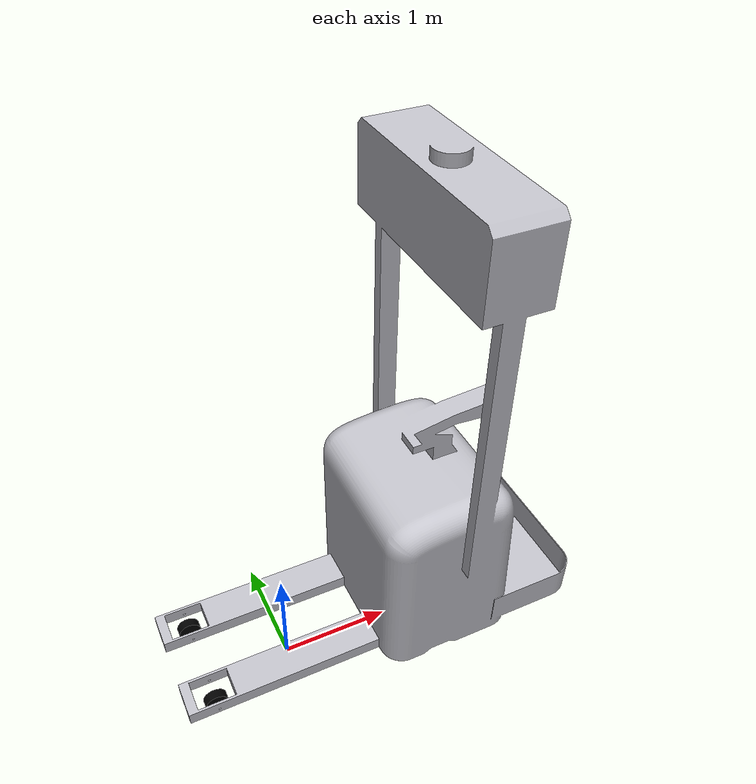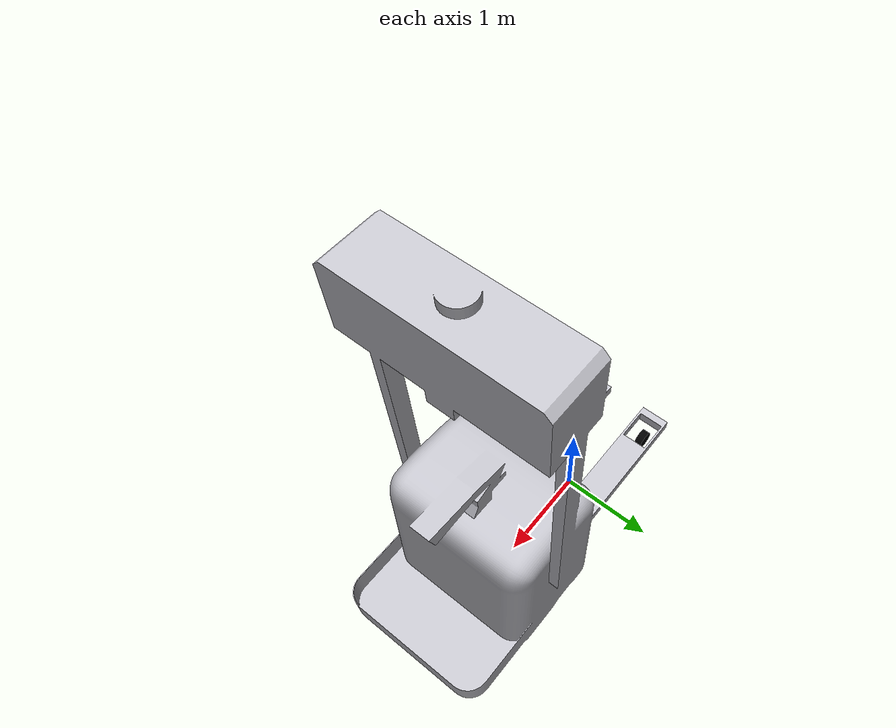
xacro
<?xml version="1.0"?>
<robot name="tricycle_drive" xmlns:xacro="http://ros.org/wiki/xacro">

  <xacro:include filename="$(find tricycle_test)/urdf/ros2_control.xacro" />
  <material name="Black">
    <color rgba="0 0 0 1" />
  </material>
  <material name="Grey">
    <color rgba="0.8 0.8 0.8 1" />
  </material>
  <material name="Orange">
    <color rgba="1 0.6 0 1" />
  </material>
  <material name="White">
    <color rgba="1 1 1 1" />
  </material>

  <link name="base_link" />

  <!-- Chassis -->
  <link name="chassis">
    <visual>
      <origin xyz="-0.8 0 -0.2" rpy="0 0 0"/>
      <geometry>
        <mesh filename="file://$(find tricycle_test)/meshes/chassis.stl" scale="0.002 0.002 0.002"/>
      </geometry>
      <material name="silver"/>
    </visual>
    <collision>
      <origin xyz="-0.8 0 -0.2" rpy="0 0 0"/>
      <geometry>
        <mesh filename="file://$(find tricycle_test)/meshes/chassis.stl" scale="0.002 0.002 0.002"/>
      </geometry>
    </collision>
    <inertial>
      <origin xyz="0 0 0" rpy="0 0 0" />
      <mass value="1" />
      <inertia ixx="0.126164" ixy="0.0" ixz="0.0" iyy="0.416519" iyz="0.0" izz="0.481014" />
    </inertial>
  </link>

  <joint name="chassis_joint" type="fixed">
    <origin xyz="0 0 0.5" rpy="0 0 0" />
    <parent link="base_link" />
    <child link="chassis" />
  </joint>

  <!-- left wheel Link -->
  <link name="left_wheel">
    <collision>
      <geometry>
        <cylinder length="0.08" radius="0.1" />
      </geometry>
    </collision>
    <visual>
      <geometry>
        <cylinder length="0.08" radius="0.1" />
      </geometry>
      <material name="Black" />
    </visual>

    <inertial>
      <mass value="2" />
      <inertia ixx="0.145833" ixy="0.0" ixz="0.0" iyy="0.145833" iyz="0.0" izz="0.125" />
    </inertial>
  </link>

  <joint name="left_wheel_joint" type="continuous">
    <origin xyz="-0.8 0.4 -0.2" rpy="-1.57 0 0" />
    <parent link="chassis" />
    <child link="left_wheel" />
    <axis xyz="0 0 1" />
    <dynamics damping="0.2" />
  </joint>

  <!-- right wheel Link -->
  <link name="right_wheel">
    <collision>
      <geometry>
        <cylinder length="0.08" radius="0.1" />
      </geometry>
    </collision>
    <visual>
      <geometry>
        <cylinder length="0.08" radius="0.1" />
      </geometry>
      <material name="Black" />
    </visual>

    <inertial>
      <mass value="2" />
      <inertia ixx="0.145833" ixy="0.0" ixz="0.0" iyy="0.145833" iyz="0.0" izz="0.125" />
    </inertial>
  </link>

  <joint name="right_wheel_joint" type="continuous">
    <origin xyz="-0.8 -0.4 -0.2" rpy="-1.57 0 0" />
    <parent link="chassis" />
    <child link="right_wheel" />
    <axis xyz="0 0 1" />
    <dynamics damping="0.2" />
  </joint>

  <!-- Steering Link -->
  <link name="steering_link">
    <visual>
      <geometry>
        <box size="0.01 0.01 0.01" />
      </geometry>
      <material name="Black" />
    </visual>
    <inertial>
      <origin xyz="0 0 0" rpy="0 0 0" />
      <mass value="0.005" />
      <inertia ixx="0.1" ixy="0.0" ixz="0.0" iyy="0.1" iyz="0.0" izz="0.1" />
    </inertial>
  </link>

  <joint name="steering_joint" type="continuous">
    <origin xyz="0.9 0 -0.2" rpy="0 0 0" />
    <parent link="chassis" />
    <child link="steering_link" />
    <axis xyz="0 0 1" />
  </joint>

  <!-- traction wheel link -->
  <link name="wheel_front_link">
    <visual>
      <geometry>
        <cylinder length="0.08" radius="0.1" />
      </geometry>
      <material name="Black" />
    </visual>
    <inertial>
      <origin xyz="0 0 0" rpy="0 0 0" />
      <mass value="15" />
      <inertia ixx="1" ixy="0" ixz="0" iyy="1" iyz="0" izz="1" />
    </inertial>
    <collision>
      <geometry>
        <cylinder length="0.08" radius="0.1" />
      </geometry>
    </collision>
  </link>

  <joint name="traction_joint" type="continuous">
    <parent link="steering_link" />
    <child link="wheel_front_link" />
    <origin xyz="0 0 0" rpy="-1.57 1.57 0" />
    <axis xyz="0 0 1" />
  </joint>

</robot>
